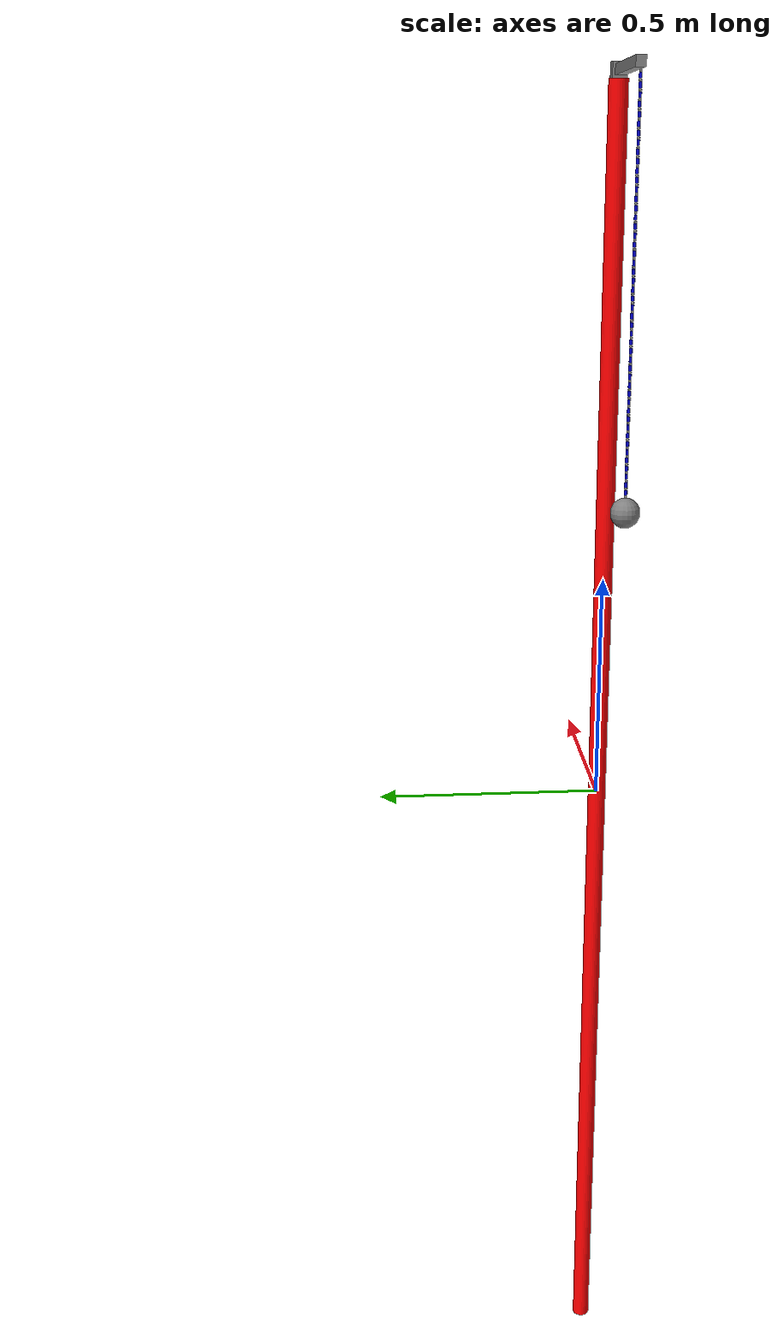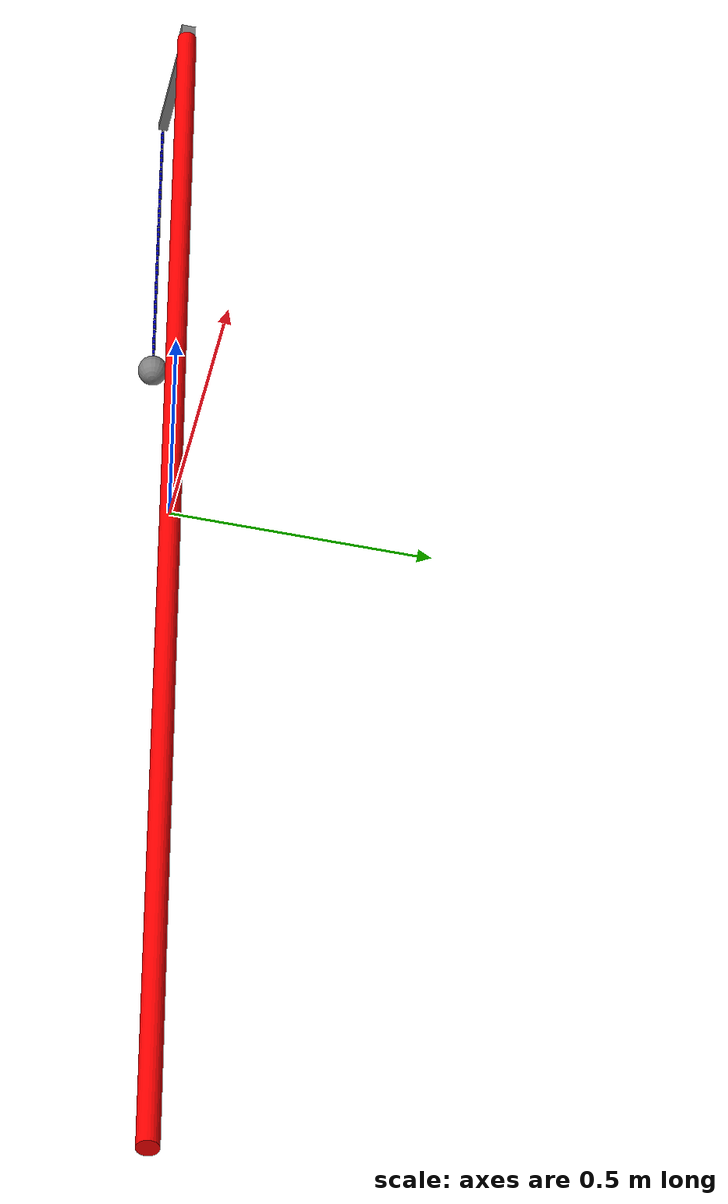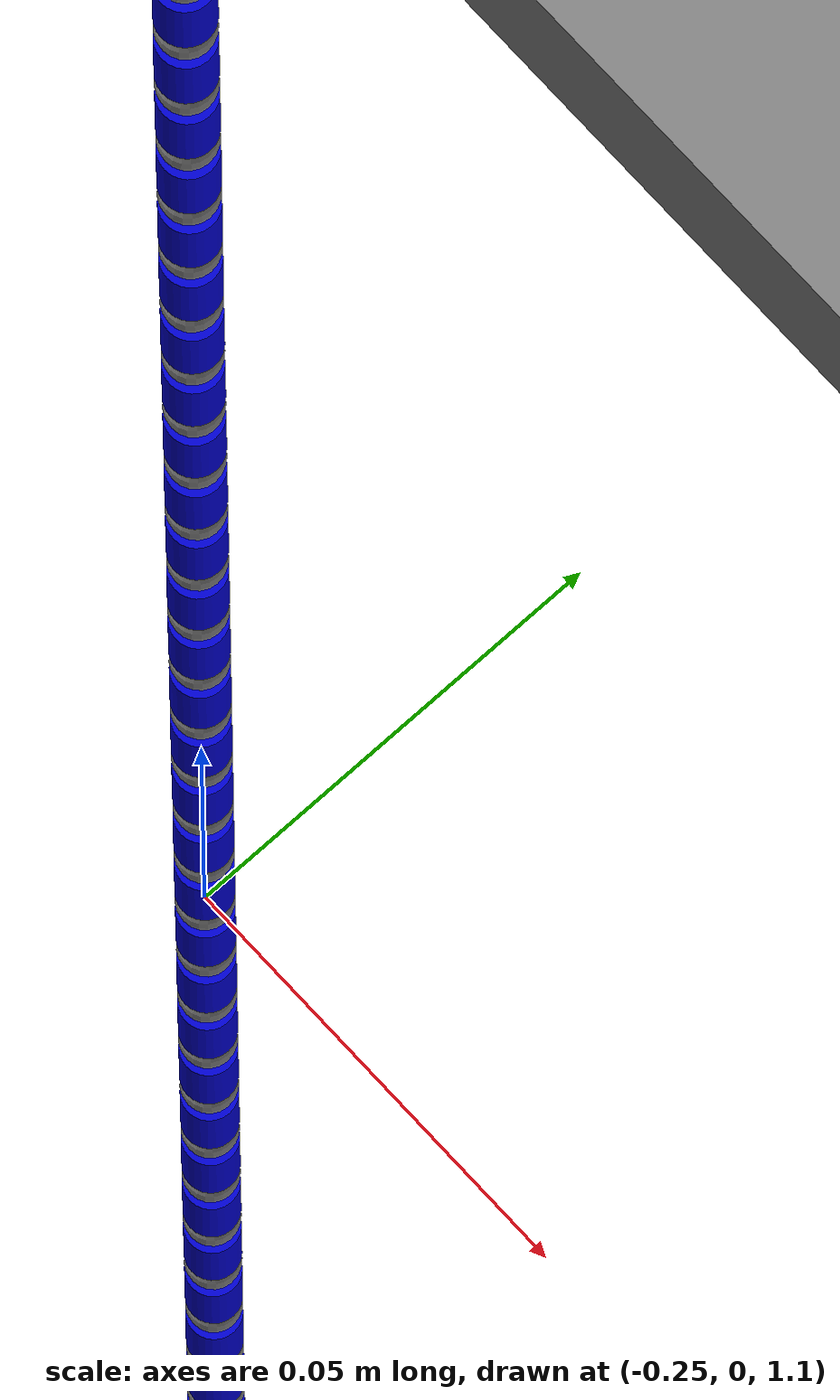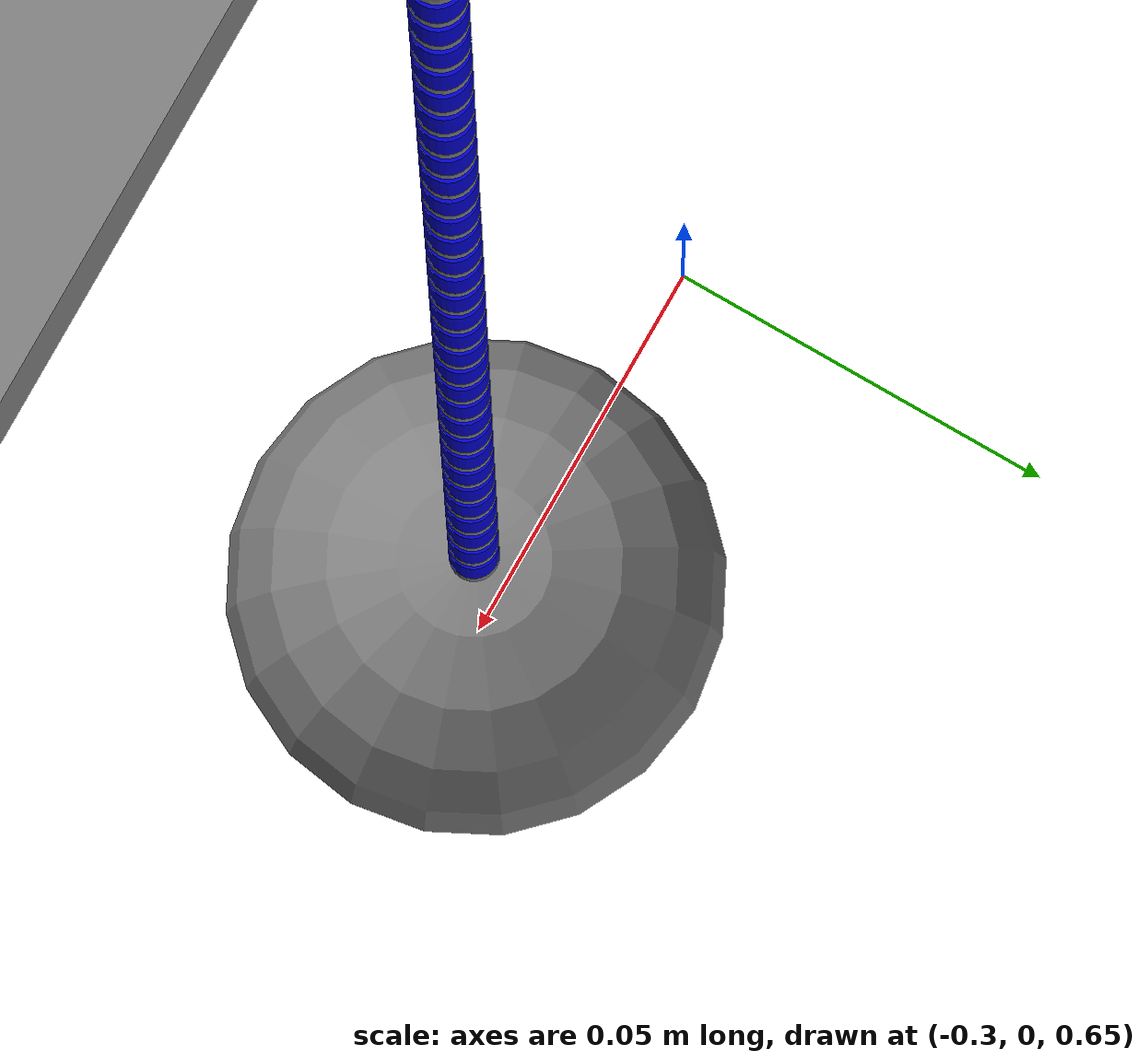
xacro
<?xml version="1.0"?>
<robot name="flexible_cable" xmlns:xacro="http://www.ros.org/wiki/xacro">

  <!-- Colors -->
  <xacro:property name="blue_color" value="0 0 0.8 1"/>
  <xacro:property name="red_color"  value="1 0 0 1"/>
  <xacro:property name="gray_color" value="0.5 0.5 0.5 1"/>

  <!-- Geometry / dynamics -->
  <xacro:property name="pillar_h"        value="3.0"/>   <!-- pillar height -->
  <xacro:property name="pillar_xy"       value="0.10"/>  <!-- pillar thickness -->
  <xacro:property name="arm_len"         value="0.25"/>  <!-- side arm length -->
  <xacro:property name="arm_xy"          value="0.02"/>  <!-- side arm thickness -->
  <xacro:property name="sphere_radius"   value="0.003"/>
  <xacro:property name="cylinder_radius" value="0.003"/>
  <xacro:property name="cylinder_length" value="0.01"/>
  <xacro:property name="damping"         value="0.002"/>
  <xacro:property name="friction"        value="0.0"/>
  <xacro:property name="effort_lim"      value="10"/>
  <xacro:property name="vel_lim"         value="10"/>

  <xacro:property name="arm_yaw" value="${-pi/2}"/>  <!-- NORTH by default -->
  <xacro:property name="c_yaw"   value="${cos(arm_yaw)}"/>
  <xacro:property name="s_yaw"   value="${sin(arm_yaw)}"/>
  <!-- Ball at the bottom -->
  <xacro:property name="ball_radius" value="0.03"/>
  <xacro:property name="ball_mass"   value="0.10"/>

  <!-- Materials -->
  <material name="blue"><color rgba="${blue_color}"/></material>
  <material name="gray"><color rgba="${gray_color}"/></material>
  <material name="red"><color rgba="${red_color}"/></material>

  <!-- World -->
  <link name="world"/>

  <!-- Vertical pillar (centered at origin; z runs from -pillar_h/2 to +pillar_h/2) -->
  <link name="base_link">
    <visual>
      <geometry><cylinder radius="0.02" length="3.0"/></geometry>
      <material name="red"/>
    </visual>
    <collision>
      <geometry><cylinder radius="0.02" length="3.0"/></geometry>
    </collision>
    <inertial>
      <mass value="1.0"/>
      <inertia ixx="0.02" ixy="0" ixz="0" iyy="0.02" iyz="0" izz="0.02"/>
    </inertial>
  </link>

  <gazebo reference="base_link">
    <material>Gazebo/Gray</material>
    <selfCollide>false</selfCollide>
  </gazebo>

  <!-- Fix pillar to world (spawn pose will place it) -->
  <joint name="fixed_to_world" type="fixed">
    <parent link="world"/>
    <child  link="base_link"/>
    <origin xyz="0 0 0" rpy="0 0 0"/>
  </joint>

  <!-- Small mount at the very top center of the pillar -->
  <link name="arm_mount">
    <visual>
      <geometry><box size="0.03 0.03 0.03"/></geometry>
      <material name="gray"/>
    </visual>
    <collision><geometry><box size="0.03 0.03 0.03"/></geometry></collision>
    <inertial>
      <mass value="0.02"/>
      <inertia ixx="1e-4" ixy="0" ixz="0" iyy="1e-4" iyz="0" izz="1e-4"/>
    </inertial>
  </link>

  <!-- Place mount at the top face of the pillar (z = +pillar_h/2) -->
  <joint name="base_to_arm_mount" type="fixed">
    <parent link="base_link"/>
    <child  link="arm_mount"/>
    <origin xyz="0 0 ${pillar_h/2 + 0.015}" rpy="0 0 0"/>
  </joint>

  <!-- Side arm: sticks out to the LEFT (negative Y). Flip sign if you want the other side. -->
  <xacro:property name="arm_sign" value="-1"/> <!-- -1 = left along -Y; +1 = right along +Y -->

  <link name="arm_link">
    <visual>
      <geometry><box size="${arm_xy} ${arm_len} ${arm_xy}"/></geometry>
      <!-- Center the arm; we’ll place the tip with a child link -->
      <material name="gray"/>
    </visual>
    <collision><geometry><box size="${arm_xy} ${arm_len} ${arm_xy}"/></geometry></collision>
    <inertial>
      <mass value="0.1"/>
      <inertia ixx="1e-3" ixy="0" ixz="0" iyy="1e-3" iyz="0" izz="1e-3"/>
    </inertial>
  </link>

  <!-- Fix arm to the mount; shift so the arm extends along -Y from the mount -->
  <joint name="arm_mount_to_arm" type="fixed">
    <parent link="arm_mount"/>
    <child  link="arm_link"/>
    <!-- world offset = Rz(yaw) * [0, L/2, 0] = [sin(yaw)*L/2, cos(yaw)*L/2, 0] -->
    <origin xyz="${s_yaw * arm_len/2} ${c_yaw * arm_len/2} 0" rpy="0 0 ${arm_yaw}"/>
  </joint>

  <!-- Arm tip (empty link) at the far edge; this is where the rope attaches -->
  <link name="arm_end">
    <inertial>
      <mass value="0.001"/>
      <inertia ixx="1e-6" ixy="0" ixz="0" iyy="1e-6" iyz="0" izz="1e-6"/>
    </inertial>
  </link>

  <joint name="arm_to_arm_end" type="fixed">
    <parent link="arm_link"/>
    <child  link="arm_end"/>
    <origin xyz="0 ${arm_sign*arm_len/2} 0" rpy="0 0 0"/>
  </joint>

  <!-- ===== Rope segment macro (sphere + revolute + cylinder + revolute) ===== -->
  <xacro:macro name="cable_segment" params="name parent">
    <link name="${name}_sphere">
      <visual><geometry><sphere radius="${sphere_radius}"/></geometry><material name="gray"/></visual>
      <collision><geometry><sphere radius="${sphere_radius}"/></geometry></collision>
      <inertial>
        <mass value="0.005"/>
        <inertia ixx="1e-4" ixy="0" ixz="0" iyy="1e-4" iyz="0" izz="1e-4"/>
      </inertial>
    </link>

    <joint name="${parent}_to_${name}_sphere" type="revolute">
      <parent link="${parent}"/>
      <child  link="${name}_sphere"/>
      <!-- hang straight down from parent -->
      <origin xyz="0 0 ${-cylinder_length - 2*sphere_radius}" rpy="0 0 0"/>
      <axis xyz="0 1 0"/>
      <limit lower="-2.0" upper="2.0" effort="${effort_lim}" velocity="${vel_lim}"/>
      <dynamics damping="${damping}" friction="${friction}"/>
    </joint>

    <link name="${name}_cylinder">
      <visual>
        <geometry><cylinder length="${cylinder_length}" radius="${cylinder_radius}"/></geometry>
        <origin xyz="0 0 ${-cylinder_length/2 - sphere_radius}" rpy="0 0 0"/>
        <material name="blue"/>
      </visual>
      <collision>
        <geometry><cylinder length="${cylinder_length}" radius="${cylinder_radius}"/></geometry>
        <origin xyz="0 0 ${-cylinder_length/2 - sphere_radius}" rpy="0 0 0"/>
      </collision>
      <inertial>
        <mass value="0.001"/>
        <inertia ixx="1e-3" ixy="0" ixz="0" iyy="1e-3" iyz="0" izz="1e-3"/>
        <origin xyz="0 0 ${-cylinder_length/2 - sphere_radius}" rpy="0 0 0"/>
      </inertial>
    </link>

    <joint name="${name}_sphere_to_cylinder" type="revolute">
      <parent link="${name}_sphere"/>
      <child  link="${name}_cylinder"/>
      <origin xyz="0 0 0" rpy="0 0 0"/>
      <axis xyz="1 0 0"/>
      <limit lower="-2.0" upper="2.0" effort="${effort_lim}" velocity="${vel_lim}"/>
      <dynamics damping="${damping}" friction="${friction}"/>
    </joint>

    <!-- Enable gravity so the rope sags -->
    <gazebo reference="${name}_sphere"><gravity>true</gravity><selfCollide>false</selfCollide></gazebo>
    <gazebo reference="${name}_cylinder"><gravity>true</gravity><selfCollide>false</selfCollide></gazebo>
  </xacro:macro>

  <!-- Rope attached to the arm tip -->
  <xacro:cable_segment name="segment_1"  parent="arm_end"/>
  <xacro:cable_segment name="segment_2"  parent="segment_1_cylinder"/>
  <xacro:cable_segment name="segment_3"  parent="segment_2_cylinder"/>
  <xacro:cable_segment name="segment_4"  parent="segment_3_cylinder"/>
  <xacro:cable_segment name="segment_5"  parent="segment_4_cylinder"/>
  <xacro:cable_segment name="segment_6"  parent="segment_5_cylinder"/>
  <xacro:cable_segment name="segment_7"  parent="segment_6_cylinder"/>
  <xacro:cable_segment name="segment_8"  parent="segment_7_cylinder"/>
  <xacro:cable_segment name="segment_9"  parent="segment_8_cylinder"/>
  <xacro:cable_segment name="segment_10" parent="segment_9_cylinder"/>
  <xacro:cable_segment name="segment_11" parent="segment_10_cylinder"/>
  <xacro:cable_segment name="segment_12" parent="segment_11_cylinder"/>
  <xacro:cable_segment name="segment_13" parent="segment_12_cylinder"/>
  <xacro:cable_segment name="segment_14" parent="segment_13_cylinder"/>
  <xacro:cable_segment name="segment_15" parent="segment_14_cylinder"/>
  <xacro:cable_segment name="segment_16" parent="segment_15_cylinder"/>
  <xacro:cable_segment name="segment_17" parent="segment_16_cylinder"/>
  <xacro:cable_segment name="segment_18" parent="segment_17_cylinder"/>
  <xacro:cable_segment name="segment_19" parent="segment_18_cylinder"/>
  <xacro:cable_segment name="segment_20" parent="segment_19_cylinder"/>
  <xacro:cable_segment name="segment_21" parent="segment_20_cylinder"/>
  <xacro:cable_segment name="segment_22" parent="segment_21_cylinder"/>
  <xacro:cable_segment name="segment_23" parent="segment_22_cylinder"/>
  <xacro:cable_segment name="segment_24" parent="segment_23_cylinder"/>
  <xacro:cable_segment name="segment_25" parent="segment_24_cylinder"/>
  <xacro:cable_segment name="segment_26" parent="segment_25_cylinder"/>
  <xacro:cable_segment name="segment_27" parent="segment_26_cylinder"/>
  <xacro:cable_segment name="segment_28" parent="segment_27_cylinder"/>
  <xacro:cable_segment name="segment_29" parent="segment_28_cylinder"/>
  <xacro:cable_segment name="segment_30" parent="segment_29_cylinder"/>
  <xacro:cable_segment name="segment_31" parent="segment_30_cylinder"/>
  <xacro:cable_segment name="segment_32" parent="segment_31_cylinder"/>
  <xacro:cable_segment name="segment_33" parent="segment_32_cylinder"/>
  <xacro:cable_segment name="segment_34" parent="segment_33_cylinder"/>
  <xacro:cable_segment name="segment_35" parent="segment_34_cylinder"/>
  <xacro:cable_segment name="segment_36" parent="segment_35_cylinder"/>
  <xacro:cable_segment name="segment_37" parent="segment_36_cylinder"/>
  <xacro:cable_segment name="segment_38" parent="segment_37_cylinder"/>
  <xacro:cable_segment name="segment_39" parent="segment_38_cylinder"/>
  <xacro:cable_segment name="segment_40" parent="segment_39_cylinder"/>
  <xacro:cable_segment name="segment_41" parent="segment_40_cylinder"/>
  <xacro:cable_segment name="segment_42" parent="segment_41_cylinder"/>
  <xacro:cable_segment name="segment_43" parent="segment_42_cylinder"/>
  <xacro:cable_segment name="segment_44" parent="segment_43_cylinder"/>
  <xacro:cable_segment name="segment_45" parent="segment_44_cylinder"/>
  <xacro:cable_segment name="segment_46" parent="segment_45_cylinder"/>
  <xacro:cable_segment name="segment_47" parent="segment_46_cylinder"/>
  <xacro:cable_segment name="segment_48" parent="segment_47_cylinder"/>
  <xacro:cable_segment name="segment_49" parent="segment_48_cylinder"/>
  <xacro:cable_segment name="segment_50" parent="segment_49_cylinder"/>
  <!-- Bottom ball -->
  <link name="end_ball">
    <visual><geometry><sphere radius="${ball_radius}"/></geometry><material name="gray"/></visual>
    <collision><geometry><sphere radius="${ball_radius}"/></geometry></collision>
    <inertial>
      <mass value="${ball_mass}"/>
      <inertia ixx="${0.4*ball_mass*ball_radius*ball_radius}" ixy="0" ixz="0"
               iyy="${0.4*ball_mass*ball_radius*ball_radius}" iyz="0"
               izz="${0.4*ball_mass*ball_radius*ball_radius}"/>
    </inertial>
  </link>

  <joint name="joint_end_ball" type="revolute">
    <parent link="segment_50_cylinder"/>
    <child  link="end_ball"/>
    <origin xyz="0 0 ${-cylinder_length - 2*sphere_radius}" rpy="0 0 0"/>
    <axis xyz="0 1 0"/>
    <limit lower="-1.57" upper="1.57" effort="${effort_lim}" velocity="${vel_lim}"/>
    <dynamics damping="${damping}" friction="${friction}"/>
  </joint>

  <gazebo>
    <self_collide>false</self_collide>
  </gazebo>
</robot>
